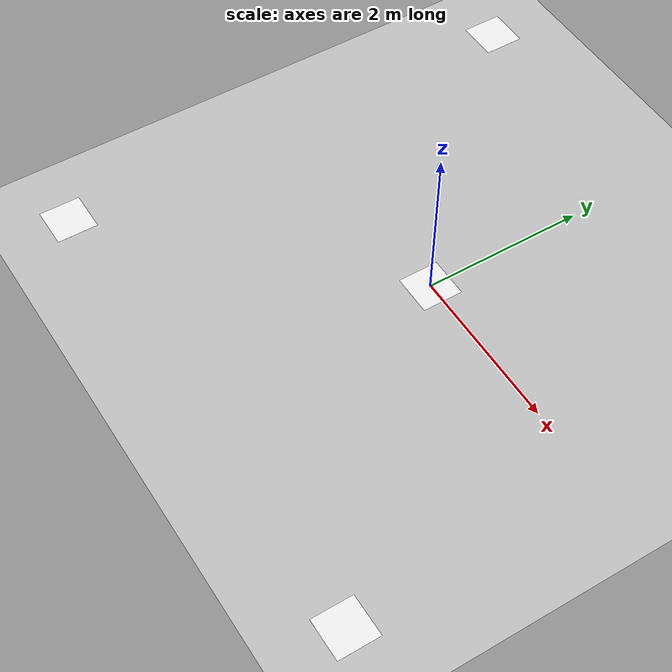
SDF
<?xml version="1.0" encoding="UTF-8"?>
<sdf version="1.9">
  <world name="aruco">
    <physics type="ode">
      <max_step_size>0.002</max_step_size>
      <real_time_factor>1.0</real_time_factor>
      <real_time_update_rate>500</real_time_update_rate>
    </physics>
    <gravity>0 0 -9.8</gravity>
    <magnetic_field>6e-06 2.3e-05 -4.2e-05</magnetic_field>
    <atmosphere type="adiabatic"/>
    <scene>
      <grid>false</grid>
      <ambient>0.4 0.4 0.4 1</ambient>
      <background>0.7 0.7 0.7 1</background>
      <shadows>true</shadows>
    </scene>
    <model name="ground_plane">
      <static>true</static>
      <link name="link">
        <collision name="collision">
          <geometry>
            <plane>
              <normal>0 0 1</normal>
              <size>1 1</size>
            </plane>
          </geometry>
          <surface>
            <friction>
              <ode>
                <mu>2</mu>
                <mu2>2</mu2>
              </ode>
            </friction>
            <bounce/>
            <contact>
              <collide_bitmask>65535</collide_bitmask>
              <ode>
                <min_depth>0.005</min_depth>
                <kp>1e8</kp>
              </ode>
            </contact>
          </surface>
        </collision>
        <visual name="visual">
          <geometry>
            <plane>
              <normal>0 0 1</normal>
              <size>100 100</size>
            </plane>
          </geometry>
          <material>
            <ambient>0.8 0.8 0.8 0.5</ambient>
            <diffuse>0.8 0.8 0.8 0.5</diffuse>
            <specular>0.8 0.8 0.8 0.5</specular>
          </material>
        </visual>
        <pose>0 0 0 0 -0 0</pose>
        <inertial>
          <pose>0 0 0 0 -0 0</pose>
          <mass>1</mass>
          <inertia>
            <ixx>1</ixx>
            <ixy>0</ixy>
            <ixz>0</ixz>
            <iyy>1</iyy>
            <iyz>0</iyz>
            <izz>1</izz>
          </inertia>
        </inertial>
        <enable_wind>false</enable_wind>
      </link>
      <pose>0 0 0 0 -0 0</pose>
      <self_collide>false</self_collide>
    </model>
    <light name="sunUTC" type="directional">
      <pose>0 0 500 0 -0 0</pose>
      <cast_shadows>true</cast_shadows>
      <intensity>1</intensity>
      <direction>0.001 0.625 -0.78</direction>
      <diffuse>0.904 0.904 0.904 1</diffuse>
      <specular>0.271 0.271 0.271 1</specular>
      <attenuation>
        <range>2000</range>
        <linear>0</linear>
        <constant>1</constant>
        <quadratic>0</quadratic>
      </attenuation>
      <spot>
        <inner_angle>0</inner_angle>
        <outer_angle>0</outer_angle>
        <falloff>0</falloff>
      </spot>
    </light>
    <spherical_coordinates>
      <surface_model>EARTH_WGS84</surface_model>
      <world_frame_orientation>ENU</world_frame_orientation>
      <latitude_deg>47.397971057728974</latitude_deg>
      <longitude_deg> 8.546163739800146</longitude_deg>
      <elevation>0</elevation>
    </spherical_coordinates>

    <!-- NEXUS_MARKERS_BEGIN (generated by start_px4_sitls.sh) -->
    <include>
      <name>arucotag_0</name>
      <uri>model://arucotag_0</uri>
      <pose>0 0 0.001 0 0 0</pose>
    </include>
    <include>
      <name>arucotag_1</name>
      <uri>model://arucotag_1</uri>
      <pose>-3 -3 0.001 0 0 0</pose>
    </include>
    <include>
      <name>arucotag_2</name>
      <uri>model://arucotag_2</uri>
      <pose>3 -3 0.001 0 0 0</pose>
    </include>
    <include>
      <name>arucotag_3</name>
      <uri>model://arucotag_3</uri>
      <pose>-3 3 0.001 0 0 0</pose>
    </include>
    <!-- NEXUS_MARKERS_END -->
  </world>
</sdf>

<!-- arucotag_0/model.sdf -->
<sdf version='1.9'>
  <model name='arucotag_0'>
    <static>true</static>
    <pose>0 0 0.001 0 0 0</pose>
    <link name='base'>
      <visual name='base_visual'>
        <geometry>
          <plane>
            <normal>0 0 1</normal>
            <size>0.5 0.5</size>
          </plane>
        </geometry>
        <material>
          <diffuse>1 1 1 1</diffuse>
          <specular>0.4 0.4 0.4 1</specular>
          <pbr>
            <metal>
              <albedo_map>model://arucotag_0/aruco_4x4_0.png</albedo_map>
            </metal>
          </pbr>
        </material>
      </visual>
    </link>
  </model>
</sdf>

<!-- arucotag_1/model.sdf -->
<sdf version='1.9'>
  <model name='arucotag_1'>
    <static>true</static>
    <pose>0 0 0.001 0 0 0</pose>
    <link name='base'>
      <visual name='base_visual'>
        <geometry>
          <plane>
            <normal>0 0 1</normal>
            <size>0.5 0.5</size>
          </plane>
        </geometry>
        <material>
          <diffuse>1 1 1 1</diffuse>
          <specular>0.4 0.4 0.4 1</specular>
          <pbr>
            <metal>
              <albedo_map>model://arucotag_1/aruco_4x4_1.png</albedo_map>
            </metal>
          </pbr>
        </material>
      </visual>
    </link>
  </model>
</sdf>

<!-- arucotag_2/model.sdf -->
<sdf version='1.9'>
  <model name='arucotag_2'>
    <static>true</static>
    <pose>0 0 0.001 0 0 0</pose>
    <link name='base'>
      <visual name='base_visual'>
        <geometry>
          <plane>
            <normal>0 0 1</normal>
            <size>0.5 0.5</size>
          </plane>
        </geometry>
        <material>
          <diffuse>1 1 1 1</diffuse>
          <specular>0.4 0.4 0.4 1</specular>
          <pbr>
            <metal>
              <albedo_map>model://arucotag_2/aruco_4x4_2.png</albedo_map>
            </metal>
          </pbr>
        </material>
      </visual>
    </link>
  </model>
</sdf>

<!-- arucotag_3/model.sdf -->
<sdf version='1.9'>
  <model name='arucotag_3'>
    <static>true</static>
    <pose>0 0 0.001 0 0 0</pose>
    <link name='base'>
      <visual name='base_visual'>
        <geometry>
          <plane>
            <normal>0 0 1</normal>
            <size>0.5 0.5</size>
          </plane>
        </geometry>
        <material>
          <diffuse>1 1 1 1</diffuse>
          <specular>0.4 0.4 0.4 1</specular>
          <pbr>
            <metal>
              <albedo_map>model://arucotag_3/aruco_4x4_3.png</albedo_map>
            </metal>
          </pbr>
        </material>
      </visual>
    </link>
  </model>
</sdf>
